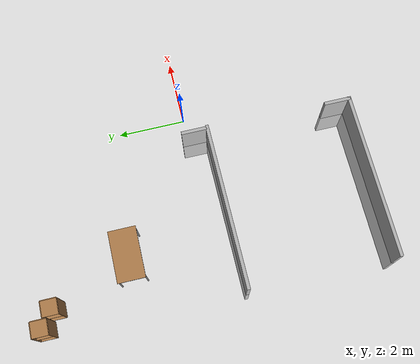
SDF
<sdf version="1.7">
 <world name="default">
  <plugin name="gz::sim::systems::Physics" filename="gz-sim-physics-system"/>
  <plugin name="gz::sim::systems::UserCommands" filename="gz-sim-user-commands-system"/>
  <plugin name="gz::sim::systems::SceneBroadcaster" filename="gz-sim-scene-broadcaster-system"/>
  <plugin name="gz::sim::systems::Sensors" filename="gz-sim-sensors-system">
   <render_engine>ogre2</render_engine>
  </plugin>
  <light name="sun" type="directional">
   <pose>0 0 10 0 -0 0</pose>
   <diffuse>0.8 0.8 0.8 1</diffuse>
   <specular>0.2 0.2 0.2 1</specular>
   <attenuation>
    <range>1000</range>
    <constant>0.9</constant>
    <linear>0.01</linear>
    <quadratic>0.001</quadratic>
   </attenuation>
   <direction>-0.5 0.1 -0.9</direction>
   <spot><inner_angle>0</inner_angle><outer_angle>0</outer_angle><falloff>0</falloff></spot>
  </light>
  <gravity>0 0 -9.8</gravity>
  <magnetic_field>6e-06 2.3e-05 -4.2e-05</magnetic_field>
  <atmosphere type="adiabatic"/>
  <physics type="ode">
   <max_step_size>0.001</max_step_size>
   <real_time_factor>1</real_time_factor>
   <real_time_update_rate>1000</real_time_update_rate>
  </physics>
  <scene><ambient>0.4 0.4 0.4 1</ambient><background>0.7 0.7 0.7 1</background><shadows>1</shadows></scene>
  <audio><device>default</device></audio>
  <spherical_coordinates>
   <surface_model>EARTH_WGS84</surface_model>
   <latitude_deg>0</latitude_deg>
   <longitude_deg>0</longitude_deg>
   <elevation>0</elevation>
   <heading_deg>0</heading_deg>
  </spherical_coordinates>
  <model name="cabinet">
   <static>1</static>
   <link name="cabinet_bottom_plate">
    <inertial>
     <pose>0 0 -1 0 -0 0</pose>
     <inertia><ixx>2.05</ixx><ixy>0</ixy><ixz>0</ixz><iyy>2.05</iyy><iyz>0</iyz><izz>2.05</izz></inertia>
     <mass>25</mass>
    </inertial>
    <collision name="cabinet_bottom_plate_geom">
     <pose>0 0 0.01 0 -0 0</pose>
     <geometry><box><size>0.45 0.45 0.02</size></box></geometry>
    </collision>
    <visual name="cabinet_bottom_plate_geom_visual">
     <pose>0 0 0.01 0 -0 0</pose>
     <geometry><box><size>0.45 0.45 0.02</size></box></geometry>
     <material>
      <script><uri>file://media/materials/scripts/gazebo.material</uri><name>Gazebo/Wood</name></script>
     </material>
    </visual>
    <collision name="cabinet_bottom_plate_geom_cabinet_back_plate">
     <pose>0.235 0 0.51 0 -0 0</pose>
     <geometry><box><size>0.02 0.45 1.02</size></box></geometry>
    </collision>
    <visual name="cabinet_bottom_plate_geom_cabinet_back_plate_visual">
     <pose>0.235 0 0.51 0 -0 0</pose>
     <geometry><box><size>0.02 0.45 1.02</size></box></geometry>
     <material>
      <script><uri>file://media/materials/scripts/gazebo.material</uri><name>Gazebo/Wood</name></script>
     </material>
    </visual>
    <collision name="cabinet_bottom_plate_geom_cabinet_left_plate">
     <pose>0 0.235 0.51 0 -0 0</pose>
     <geometry><box><size>0.45 0.02 1.02</size></box></geometry>
    </collision>
    <visual name="cabinet_bottom_plate_geom_cabinet_left_plate_visual">
     <pose>0 0.235 0.51 0 -0 0</pose>
     <geometry><box><size>0.45 0.02 1.02</size></box></geometry>
     <material>
      <script><uri>file://media/materials/scripts/gazebo.material</uri><name>Gazebo/Wood</name></script>
     </material>
    </visual>
    <collision name="cabinet_bottom_plate_geom_cabinet_middle_plate">
     <pose>0 0 0.51 0 -0 0</pose>
     <geometry><box><size>0.45 0.45 0.02</size></box></geometry>
    </collision>
    <visual name="cabinet_bottom_plate_geom_cabinet_middle_plate_visual">
     <pose>0 0 0.51 0 -0 0</pose>
     <geometry><box><size>0.45 0.45 0.02</size></box></geometry>
     <material>
      <script><uri>file://media/materials/scripts/gazebo.material</uri><name>Gazebo/Wood</name></script>
     </material>
    </visual>
    <collision name="cabinet_bottom_plate_geom_cabinet_right_plate">
     <pose>0 -0.235 0.51 0 -0 0</pose>
     <geometry><box><size>0.45 0.02 1.02</size></box></geometry>
    </collision>
    <visual name="cabinet_bottom_plate_geom_cabinet_right_plate_visual">
     <pose>0 -0.235 0.51 0 -0 0</pose>
     <geometry><box><size>0.45 0.02 1.02</size></box></geometry>
     <material>
      <script><uri>file://media/materials/scripts/gazebo.material</uri><name>Gazebo/Wood</name></script>
     </material>
    </visual>
    <collision name="cabinet_bottom_plate_geom_cabinet_top_plate">
     <pose>0 0 1.01 0 -0 0</pose>
     <geometry><box><size>0.45 0.45 0.02</size></box></geometry>
    </collision>
    <visual name="cabinet_bottom_plate_geom_cabinet_top_plate_visual">
     <pose>0 0 1.01 0 -0 0</pose>
     <geometry><box><size>0.45 0.45 0.02</size></box></geometry>
     <material>
      <script><uri>file://media/materials/scripts/gazebo.material</uri><name>Gazebo/Wood</name></script>
     </material>
    </visual>
   </link>
   <pose>-5.42127 5.04538 0.2 0 -0 0</pose>
  </model>
  <model name="cabinet_0">
   <static>1</static>
   <link name="cabinet_bottom_plate">
    <inertial>
     <pose>0 0 -1 0 -0 0</pose>
     <inertia><ixx>2.05</ixx><ixy>0</ixy><ixz>0</ixz><iyy>2.05</iyy><iyz>0</iyz><izz>2.05</izz></inertia>
     <mass>25</mass>
    </inertial>
    <collision name="cabinet_bottom_plate_geom">
     <pose>0 0 0.01 0 -0 0</pose>
     <geometry><box><size>0.45 0.45 0.02</size></box></geometry>
    </collision>
    <visual name="cabinet_bottom_plate_geom_visual">
     <pose>0 0 0.01 0 -0 0</pose>
     <geometry><box><size>0.45 0.45 0.02</size></box></geometry>
     <material>
      <script><uri>file://media/materials/scripts/gazebo.material</uri><name>Gazebo/Wood</name></script>
     </material>
    </visual>
    <collision name="cabinet_bottom_plate_geom_cabinet_back_plate">
     <pose>0.235 0 0.51 0 -0 0</pose>
     <geometry><box><size>0.02 0.45 1.02</size></box></geometry>
    </collision>
    <visual name="cabinet_bottom_plate_geom_cabinet_back_plate_visual">
     <pose>0.235 0 0.51 0 -0 0</pose>
     <geometry><box><size>0.02 0.45 1.02</size></box></geometry>
     <material>
      <script><uri>file://media/materials/scripts/gazebo.material</uri><name>Gazebo/Wood</name></script>
     </material>
    </visual>
    <collision name="cabinet_bottom_plate_geom_cabinet_left_plate">
     <pose>0 0.235 0.51 0 -0 0</pose>
     <geometry><box><size>0.45 0.02 1.02</size></box></geometry>
    </collision>
    <visual name="cabinet_bottom_plate_geom_cabinet_left_plate_visual">
     <pose>0 0.235 0.51 0 -0 0</pose>
     <geometry><box><size>0.45 0.02 1.02</size></box></geometry>
     <material>
      <script><uri>file://media/materials/scripts/gazebo.material</uri><name>Gazebo/Wood</name></script>
     </material>
    </visual>
    <collision name="cabinet_bottom_plate_geom_cabinet_middle_plate">
     <pose>0 0 0.51 0 -0 0</pose>
     <geometry><box><size>0.45 0.45 0.02</size></box></geometry>
    </collision>
    <visual name="cabinet_bottom_plate_geom_cabinet_middle_plate_visual">
     <pose>0 0 0.51 0 -0 0</pose>
     <geometry><box><size>0.45 0.45 0.02</size></box></geometry>
     <material>
      <script><uri>file://media/materials/scripts/gazebo.material</uri><name>Gazebo/Wood</name></script>
     </material>
    </visual>
    <collision name="cabinet_bottom_plate_geom_cabinet_right_plate">
     <pose>0 -0.235 0.51 0 -0 0</pose>
     <geometry><box><size>0.45 0.02 1.02</size></box></geometry>
    </collision>
    <visual name="cabinet_bottom_plate_geom_cabinet_right_plate_visual">
     <pose>0 -0.235 0.51 0 -0 0</pose>
     <geometry><box><size>0.45 0.02 1.02</size></box></geometry>
     <material>
      <script><uri>file://media/materials/scripts/gazebo.material</uri><name>Gazebo/Wood</name></script>
     </material>
    </visual>
    <collision name="cabinet_bottom_plate_geom_cabinet_top_plate">
     <pose>0 0 1.01 0 -0 0</pose>
     <geometry><box><size>0.45 0.45 0.02</size></box></geometry>
    </collision>
    <visual name="cabinet_bottom_plate_geom_cabinet_top_plate_visual">
     <pose>0 0 1.01 0 -0 0</pose>
     <geometry><box><size>0.45 0.45 0.02</size></box></geometry>
     <material>
      <script><uri>file://media/materials/scripts/gazebo.material</uri><name>Gazebo/Wood</name></script>
     </material>
    </visual>
   </link>
   <pose>-4.89866 4.74471 0 0 -0 0</pose>
  </model>
  <model name="ground_plane">
   <static>1</static>
   <link name="link">
    <collision name="collision">
     <geometry><plane><normal>0 0 1</normal><size>100 100</size></plane></geometry>
     <surface><friction><ode><mu>100</mu><mu2>50</mu2></ode></friction></surface>
    </collision>
    <visual name="visual">
     <cast_shadows>0</cast_shadows>
     <geometry><plane><normal>0 0 1</normal><size>100 100</size></plane></geometry>
     <material>
      <script><uri>file://media/materials/scripts/gazebo.material</uri><name>Gazebo/Grey</name></script>
     </material>
    </visual>
   </link>
  </model>
  <model name="table">
   <static>1</static>
   <link name="link">
    <collision name="surface">
     <pose>0 0 1 0 -0 0</pose>
     <geometry><box><size>1.5 0.8 0.03</size></box></geometry>
     <surface><friction><ode><mu>0.6</mu><mu2>0.6</mu2></ode></friction></surface>
    </collision>
    <visual name="visual1">
     <pose>0 0 1 0 -0 0</pose>
     <geometry><box><size>1.5 0.8 0.03</size></box></geometry>
     <material>
      <script><uri>file://media/materials/scripts/gazebo.material</uri><name>Gazebo/Wood</name></script>
     </material>
    </visual>
    <collision name="front_left_leg">
     <pose>0.68 0.38 0.5 0 -0 0</pose>
     <geometry><cylinder><radius>0.02</radius><length>1</length></cylinder></geometry>
    </collision>
    <visual name="front_left_leg">
     <pose>0.68 0.38 0.5 0 -0 0</pose>
     <geometry><cylinder><radius>0.02</radius><length>1</length></cylinder></geometry>
     <material>
      <script><uri>file://media/materials/scripts/gazebo.material</uri><name>Gazebo/Grey</name></script>
     </material>
    </visual>
    <collision name="front_right_leg">
     <pose>0.68 -0.38 0.5 0 -0 0</pose>
     <geometry><cylinder><radius>0.02</radius><length>1</length></cylinder></geometry>
    </collision>
    <visual name="front_right_leg">
     <pose>0.68 -0.38 0.5 0 -0 0</pose>
     <geometry><cylinder><radius>0.02</radius><length>1</length></cylinder></geometry>
     <material>
      <script><uri>file://media/materials/scripts/gazebo.material</uri><name>Gazebo/Grey</name></script>
     </material>
    </visual>
    <collision name="back_right_leg">
     <pose>-0.68 -0.38 0.5 0 -0 0</pose>
     <geometry><cylinder><radius>0.02</radius><length>1</length></cylinder></geometry>
    </collision>
    <visual name="back_right_leg">
     <pose>-0.68 -0.38 0.5 0 -0 0</pose>
     <geometry><cylinder><radius>0.02</radius><length>1</length></cylinder></geometry>
     <material>
      <script><uri>file://media/materials/scripts/gazebo.material</uri><name>Gazebo/Grey</name></script>
     </material>
    </visual>
    <collision name="back_left_leg">
     <pose>-0.68 0.38 0.5 0 -0 0</pose>
     <geometry><cylinder><radius>0.02</radius><length>1</length></cylinder></geometry>
    </collision>
    <visual name="back_left_leg">
     <pose>-0.68 0.38 0.5 0 -0 0</pose>
     <geometry><cylinder><radius>0.02</radius><length>1</length></cylinder></geometry>
     <material>
      <script><uri>file://media/materials/scripts/gazebo.material</uri><name>Gazebo/Grey</name></script>
     </material>
    </visual>
   </link>
   <pose>-3.94841 2.42851 0 0 -0 0</pose>
  </model>
  <model name="wood_cube_10cm">
   <link name="link">
    <pose>0 0 0.05 0 -0 0</pose>
    <inertial>
     <mass>0.5167</mass>
     <inertia>
      <ixx>0.000861167</ixx>
      <ixy>0</ixy>
      <ixz>0</ixz>
      <iyy>0.000861167</iyy>
      <iyz>0</iyz>
      <izz>0.000861167</izz>
     </inertia>
    </inertial>
    <collision name="collision">
     <geometry><box><size>0.1 0.1 0.1</size></box></geometry>
     <surface>
      <contact>
       <poissons_ratio>0.347</poissons_ratio>
       <elastic_modulus>8.8e+09</elastic_modulus>
       <ode><kp>100000</kp><kd>100</kd><max_vel>100</max_vel><min_depth>0.001</min_depth></ode>
      </contact>
      <friction>
       <torsional>
        <coefficient>1</coefficient>
        <use_patch_radius>0</use_patch_radius>
        <surface_radius>0.01</surface_radius>
       </torsional>
      </friction>
     </surface>
    </collision>
    <visual name="visual">
     <geometry><box><size>0.1 0.1 0.1</size></box></geometry>
     <material>
      <script><uri>file://media/materials/scripts/gazebo.material</uri><name>Gazebo/Wood</name></script>
     </material>
    </visual>
   </link>
   <pose>-3.0526 2.5016 0.024387 0 -0 0</pose>
  </model>
  <model name="room_wall_2x5m">
   <link name="link">
    <visual name="visual">
     <geometry><box><size>0.1 5 2</size></box></geometry>
     <material>
      <script>
       <uri>https://fuel.ignitionrobotics.org/1.0/sebbyjp/models/room_wall_2x5m/1/files/material/script</uri>
       <uri>https://fuel.ignitionrobotics.org/1.0/sebbyjp/models/room_wall_2x5m/1/files/material/textures</uri>
       <name>Custom/room_wall_2x5m</name>
      </script>
     </material>
    </visual>
    <collision name="collision"><geometry><box><size>0.1 5 2</size></box></geometry></collision>
   </link>
   <static>1</static>
   <pose>-3.18707 -0.62576 0 0 0 -1.56544</pose>
  </model>
  <model name="room_wall_2x5m_clone">
   <link name="link">
    <visual name="visual">
     <geometry><box><size>0.1 5 2</size></box></geometry>
     <material>
      <script>
       <uri>https://fuel.ignitionrobotics.org/1.0/sebbyjp/models/room_wall_2x5m/1/files/material/script</uri>
       <uri>https://fuel.ignitionrobotics.org/1.0/sebbyjp/models/room_wall_2x5m/1/files/material/textures</uri>
       <name>Custom/room_wall_2x5m</name>
      </script>
     </material>
    </visual>
    <collision name="collision"><geometry><box><size>0.1 5 2</size></box></geometry></collision>
   </link>
   <static>1</static>
   <pose>-3.28099 -4.98536 0 0 0 -1.56544</pose>
  </model>
  <model name="door_08x2m">
   <link name="link">
    <visual name="visual">
     <geometry><box><size>0.1 0.8 2</size></box></geometry>
     <material>
      <script>
       <uri>https://fuel.ignitionrobotics.org/1.0/watermelon123/models/six-eight door/1/files/material/script</uri>
       <uri>https://fuel.ignitionrobotics.org/1.0/watermelon123/models/six-eight door/1/files/material/textures</uri>
       <name>Custom/door_08x2m</name>
      </script>
     </material>
    </visual>
   </link>
   <static>1</static>
   <pose>-0.768001 -0.227306 0 0 -0 0</pose>
  </model>
  <model name="door_08x2m_clone">
   <link name="link">
    <visual name="visual">
     <geometry><box><size>0.1 0.8 2</size></box></geometry>
     <material>
      <script>
       <uri>https://fuel.ignitionrobotics.org/1.0/watermelon123/models/six-eight door/1/files/material/script</uri>
       <uri>https://fuel.ignitionrobotics.org/1.0/watermelon123/models/six-eight door/1/files/material/textures</uri>
       <name>Custom/door_08x2m</name>
      </script>
     </material>
    </visual>
   </link>
   <static>1</static>
   <pose>-0.834798 -4.6027 0 0 -0 0</pose>
  </model>
 </world>
</sdf>
